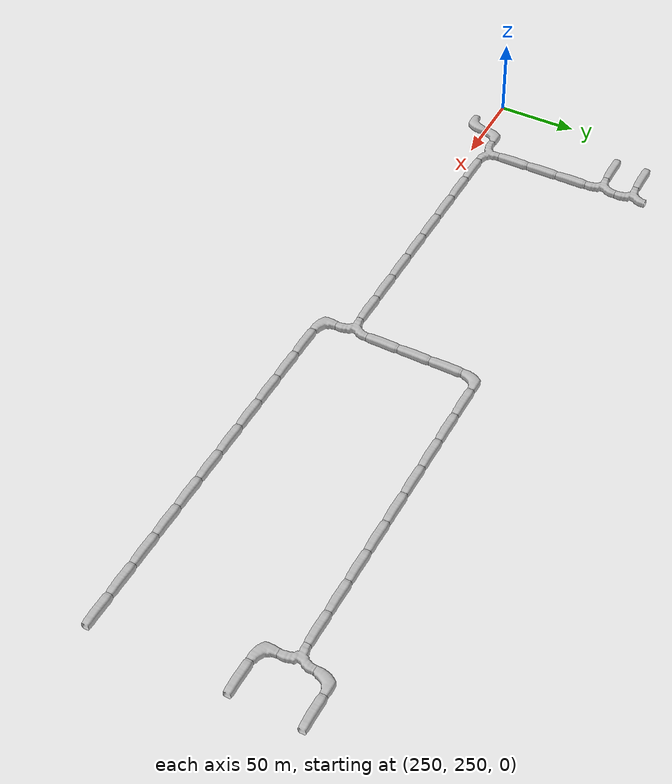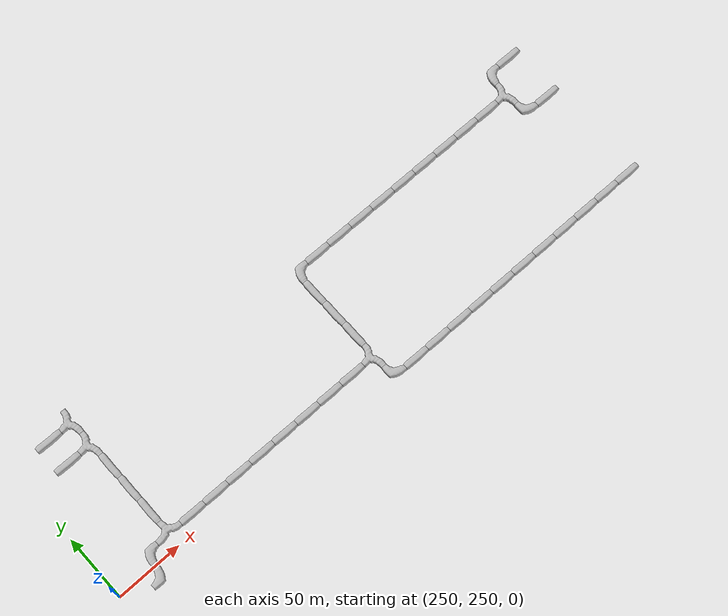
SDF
<sdf version="1.6">
 <world name="cave_16000_32">
  <include>
   <static>true</static>
   <name>cave_14_17</name>
   <pose>280 340 0 0 0 1.5707963267948966</pose>
   <uri>model://cave_straight_20m</uri>
  </include>
  <include>
   <static>true</static>
   <name>cave_15_17</name>
   <pose>300 340 0 0 0 1.5707963267948966</pose>
   <uri>model://cave_3way_20m</uri>
  </include>
  <include>
   <static>true</static>
   <name>cave_15_16</name>
   <pose>300 320 0 0 0 0.0</pose>
   <uri>model://cave_straight_20m</uri>
  </include>
  <include>
   <static>true</static>
   <name>cave_15_15</name>
   <pose>300 300 0 0 0 0.0</pose>
   <uri>model://cave_straight_20m</uri>
  </include>
  <include>
   <static>true</static>
   <name>cave_15_14</name>
   <pose>300 280 0 0 0 0.0</pose>
   <uri>model://cave_straight_20m</uri>
  </include>
  <include>
   <static>true</static>
   <name>cave_15_13</name>
   <pose>300 260 0 0 0 0.0</pose>
   <uri>model://cave_3way_20m</uri>
  </include>
  <include>
   <static>true</static>
   <name>cave_16_13</name>
   <pose>320 260 0 0 0 1.5707963267948966</pose>
   <uri>model://cave_straight_20m</uri>
  </include>
  <include>
   <static>true</static>
   <name>cave_17_13</name>
   <pose>340 260 0 0 0 1.5707963267948966</pose>
   <uri>model://cave_straight_20m</uri>
  </include>
  <include>
   <static>true</static>
   <name>cave_18_13</name>
   <pose>360 260 0 0 0 1.5707963267948966</pose>
   <uri>model://cave_straight_20m</uri>
  </include>
  <include>
   <static>true</static>
   <name>cave_19_13</name>
   <pose>380 260 0 0 0 1.5707963267948966</pose>
   <uri>model://cave_straight_20m</uri>
  </include>
  <include>
   <static>true</static>
   <name>cave_20_13</name>
   <pose>400 260 0 0 0 1.5707963267948966</pose>
   <uri>model://cave_straight_20m</uri>
  </include>
  <include>
   <static>true</static>
   <name>cave_21_13</name>
   <pose>420 260 0 0 0 1.5707963267948966</pose>
   <uri>model://cave_straight_20m</uri>
  </include>
  <include>
   <static>true</static>
   <name>cave_22_13</name>
   <pose>440 260 0 0 0 1.5707963267948966</pose>
   <uri>model://cave_straight_20m</uri>
  </include>
  <include>
   <static>true</static>
   <name>cave_23_13</name>
   <pose>460 260 0 0 0 1.5707963267948966</pose>
   <uri>model://cave_straight_20m</uri>
  </include>
  <include>
   <static>true</static>
   <name>cave_24_13</name>
   <pose>480 260 0 0 0 1.5707963267948966</pose>
   <uri>model://cave_3way_20m</uri>
  </include>
  <include>
   <static>true</static>
   <name>cave_24_12</name>
   <pose>480 240 0 0 0 0.0</pose>
   <uri>model://cave_L_20m</uri>
  </include>
  <include>
   <static>true</static>
   <name>cave_25_12</name>
   <pose>500 240 0 0 0 1.5707963267948966</pose>
   <uri>model://cave_straight_20m</uri>
  </include>
  <include>
   <static>true</static>
   <name>cave_26_12</name>
   <pose>520 240 0 0 0 1.5707963267948966</pose>
   <uri>model://cave_straight_20m</uri>
  </include>
  <include>
   <static>true</static>
   <name>cave_27_12</name>
   <pose>540 240 0 0 0 1.5707963267948966</pose>
   <uri>model://cave_straight_20m</uri>
  </include>
  <include>
   <static>true</static>
   <name>cave_28_12</name>
   <pose>560 240 0 0 0 1.5707963267948966</pose>
   <uri>model://cave_straight_20m</uri>
  </include>
  <include>
   <static>true</static>
   <name>cave_29_12</name>
   <pose>580 240 0 0 0 1.5707963267948966</pose>
   <uri>model://cave_straight_20m</uri>
  </include>
  <include>
   <static>true</static>
   <name>cave_30_12</name>
   <pose>600 240 0 0 0 1.5707963267948966</pose>
   <uri>model://cave_straight_20m</uri>
  </include>
  <include>
   <static>true</static>
   <name>cave_31_12</name>
   <pose>620 240 0 0 0 1.5707963267948966</pose>
   <uri>model://cave_straight_20m</uri>
  </include>
  <include>
   <static>true</static>
   <name>cave_32_12</name>
   <pose>640 240 0 0 0 1.5707963267948966</pose>
   <uri>model://cave_straight_20m</uri>
  </include>
  <include>
   <static>true</static>
   <name>cave_33_12</name>
   <pose>660 240 0 0 0 1.5707963267948966</pose>
   <uri>model://cave_straight_20m</uri>
  </include>
  <include>
   <static>true</static>
   <name>cave_34_12</name>
   <pose>680 240 0 0 0 1.5707963267948966</pose>
   <uri>model://cave_straight_20m</uri>
  </include>
  <include>
   <static>true</static>
   <name>cave_35_12</name>
   <pose>700 240 0 0 0 1.5707963267948966</pose>
   <uri>model://cave_straight_20m</uri>
  </include>
  <include>
   <static>true</static>
   <name>cave_24_14</name>
   <pose>480 280 0 0 0 0.0</pose>
   <uri>model://cave_straight_20m</uri>
  </include>
  <include>
   <static>true</static>
   <name>cave_24_15</name>
   <pose>480 300 0 0 0 0.0</pose>
   <uri>model://cave_straight_20m</uri>
  </include>
  <include>
   <static>true</static>
   <name>cave_24_16</name>
   <pose>480 320 0 0 0 0.0</pose>
   <uri>model://cave_straight_20m</uri>
  </include>
  <include>
   <static>true</static>
   <name>cave_24_17</name>
   <pose>480 340 0 0 0 -1.5707963267948966</pose>
   <uri>model://cave_L_20m</uri>
  </include>
  <include>
   <static>true</static>
   <name>cave_25_17</name>
   <pose>500 340 0 0 0 1.5707963267948966</pose>
   <uri>model://cave_straight_20m</uri>
  </include>
  <include>
   <static>true</static>
   <name>cave_26_17</name>
   <pose>520 340 0 0 0 1.5707963267948966</pose>
   <uri>model://cave_straight_20m</uri>
  </include>
  <include>
   <static>true</static>
   <name>cave_27_17</name>
   <pose>540 340 0 0 0 1.5707963267948966</pose>
   <uri>model://cave_straight_20m</uri>
  </include>
  <include>
   <static>true</static>
   <name>cave_28_17</name>
   <pose>560 340 0 0 0 1.5707963267948966</pose>
   <uri>model://cave_straight_20m</uri>
  </include>
  <include>
   <static>true</static>
   <name>cave_29_17</name>
   <pose>580 340 0 0 0 1.5707963267948966</pose>
   <uri>model://cave_straight_20m</uri>
  </include>
  <include>
   <static>true</static>
   <name>cave_30_17</name>
   <pose>600 340 0 0 0 1.5707963267948966</pose>
   <uri>model://cave_straight_20m</uri>
  </include>
  <include>
   <static>true</static>
   <name>cave_31_17</name>
   <pose>620 340 0 0 0 1.5707963267948966</pose>
   <uri>model://cave_straight_20m</uri>
  </include>
  <include>
   <static>true</static>
   <name>cave_32_17</name>
   <pose>640 340 0 0 0 1.5707963267948966</pose>
   <uri>model://cave_straight_20m</uri>
  </include>
  <include>
   <static>true</static>
   <name>cave_33_17</name>
   <pose>660 340 0 0 0 1.5707963267948966</pose>
   <uri>model://cave_straight_20m</uri>
  </include>
  <include>
   <static>true</static>
   <name>cave_34_17</name>
   <pose>680 340 0 0 0 1.5707963267948966</pose>
   <uri>model://cave_3way_20m</uri>
  </include>
  <include>
   <static>true</static>
   <name>cave_34_16</name>
   <pose>680 320 0 0 0 0.0</pose>
   <uri>model://cave_L_20m</uri>
  </include>
  <include>
   <static>true</static>
   <name>cave_35_16</name>
   <pose>700 320 0 0 0 1.5707963267948966</pose>
   <uri>model://cave_straight_20m</uri>
  </include>
  <include>
   <static>true</static>
   <name>cave_34_18</name>
   <pose>680 360 0 0 0 -1.5707963267948966</pose>
   <uri>model://cave_L_20m</uri>
  </include>
  <include>
   <static>true</static>
   <name>cave_35_18</name>
   <pose>700 360 0 0 0 1.5707963267948966</pose>
   <uri>model://cave_straight_20m</uri>
  </include>
  <include>
   <static>true</static>
   <name>cave_14_13</name>
   <pose>280 260 0 0 0 -1.5707963267948966</pose>
   <uri>model://cave_L_20m</uri>
  </include>
  <include>
   <static>true</static>
   <name>cave_14_12</name>
   <pose>280 240 0 0 0 1.5707963267948966</pose>
   <uri>model://cave_L_20m</uri>
  </include>
  <include>
   <static>true</static>
   <name>cave_15_18</name>
   <pose>300 360 0 0 0 1.5707963267948966</pose>
   <uri>model://cave_3way_20m</uri>
  </include>
  <include>
   <static>true</static>
   <name>cave_14_18</name>
   <pose>280 360 0 0 0 1.5707963267948966</pose>
   <uri>model://cave_straight_20m</uri>
  </include>
 </world>
</sdf>
